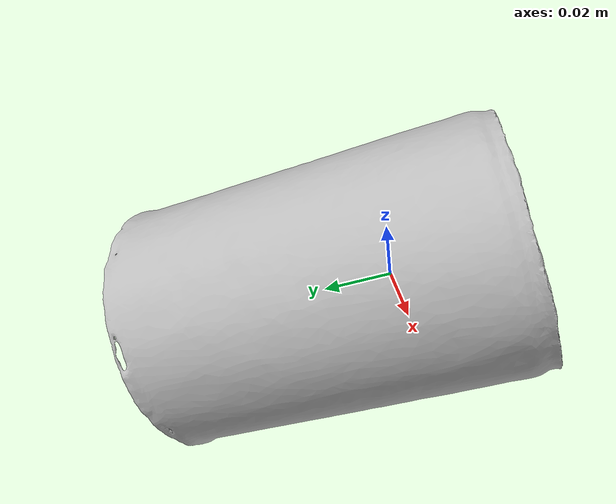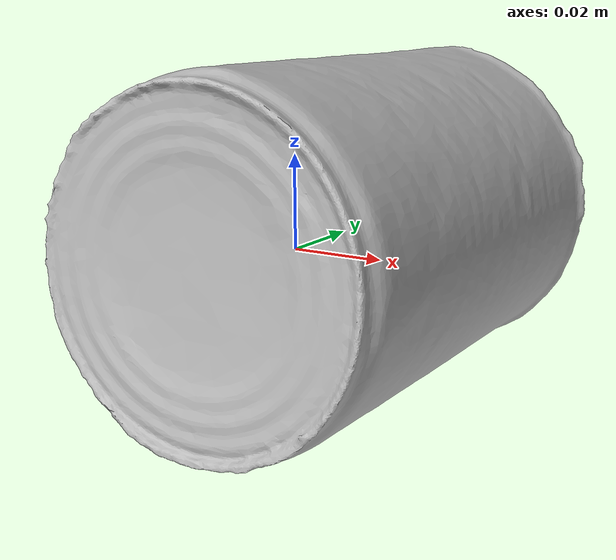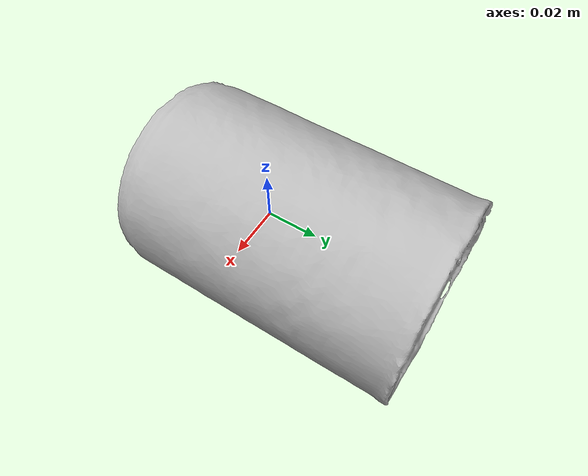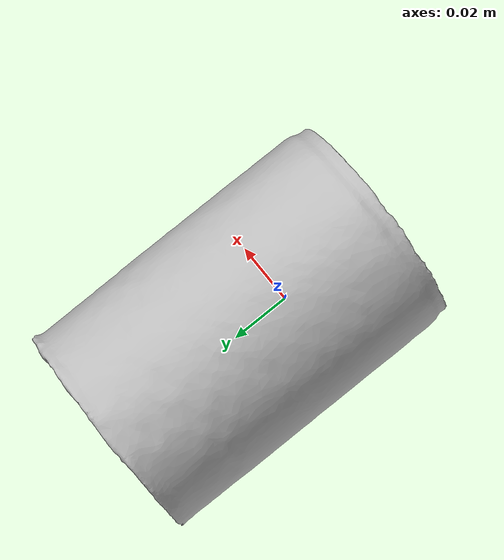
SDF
<?xml version='1.0'?>
<sdf version="1.4">
  <model name="Peas">
    <static>false</static>
    <link name="link">
      <inertial>
        <pose>0.0019040249491114579 0.016141512484331506 0.0019533799145786566 1.5790128529128336 -0.452398663949469 3.137763966053014</pose>
        <mass>0.04687300397490212</mass>
        <inertia>
          <ixx>6.156968243240549e-05</ixx>
          <ixy>-3.0744426450019917e-21</ixy>
          <ixz>8.35713890869977e-21</ixz>
          <iyy>6.152728386323662e-05</iyy>
          <iyz>1.4721148104476636e-20</iyz>
          <izz>3.235344618746236e-05</izz>
        </inertia>
      </inertial>
      <collision name="collision">
        <geometry>
          <mesh>
            <!-- Use a downsampled mesh for collisions -->
            <uri>model:///Peas/Peas_250_collision.obj</uri>
	        </mesh>
        </geometry>
        <surface>
      </surface>
      </collision>
      <visual name="visual">
        <geometry>
          <mesh>
            <uri>model:///Peas/Peas_25k_tex.obj</uri>
	        </mesh>
        </geometry>
        <material>
          <script>
            <uri>model:///Peas/Peas.material</uri>
            <name>Peas</name>
          </script>
        </material>
      </visual>
    </link>
  </model>
</sdf>
